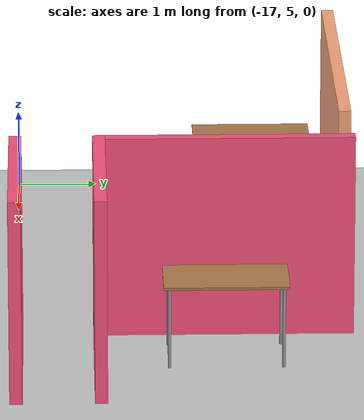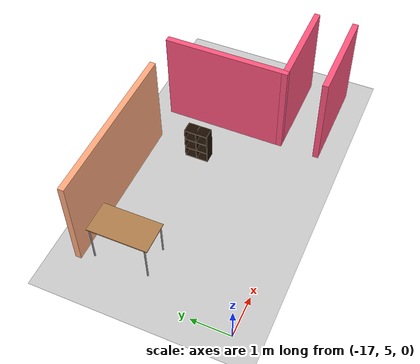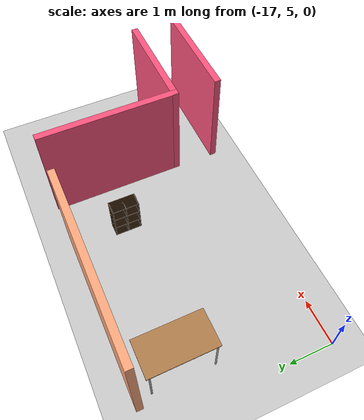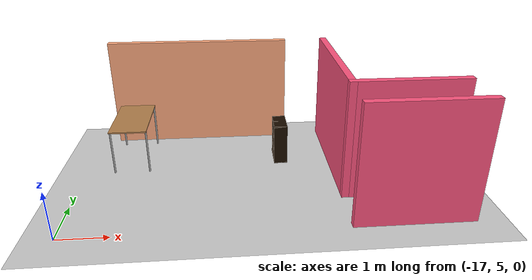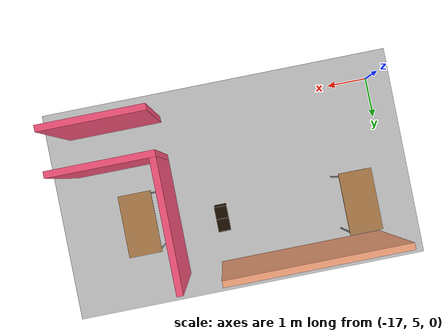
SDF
<sdf version="1.6">
 <world name="default">
  <model name="ground_plane">
   <static>1</static>
   <link name="link">
    <collision name="collision">
     <geometry><plane><normal>0 0 1</normal><size>100 100</size></plane></geometry>
     <surface><friction><ode><mu>100</mu><mu2>50</mu2></ode></friction></surface>
    </collision>
    <visual name="visual">
     <cast_shadows>0</cast_shadows>
     <geometry><plane><normal>0 0 1</normal><size>100 100</size></plane></geometry>
     <material>
      <script><uri>file://media/materials/scripts/gazebo.material</uri><name>Gazebo/Grey</name></script>
     </material>
    </visual>
   </link>
  </model>
  <model name="myWorld">
   <pose>-1.5 0 0 0 -0 0</pose>
   <link name="Wall_44">
    <collision name="Wall_44_Collision">
     <geometry><box><size>4.15 0.15 2.5</size></box></geometry>
     <pose>0 0 1.25 0 -0 0</pose>
    </collision>
    <visual name="Wall_44_Visual">
     <pose>0 0 1.25 0 -0 0</pose>
     <geometry><box><size>4.15 0.15 2.5</size></box></geometry>
     <material>
      <script><uri>file://media/materials/scripts/gazebo.material</uri><name>Gazebo/Grey</name></script>
      <ambient>1 0.666667 0.498039 1</ambient>
     </material>
     <meta><layer>0</layer></meta>
    </visual>
    <pose>-13 9 0 0 -0 0</pose>
   </link>
   <link name="Wall_90">
    <collision name="Wall_90_Collision">
     <geometry><box><size>2.4 0.15 2.5</size></box></geometry>
     <pose>0 0 1.25 0 -0 0</pose>
    </collision>
    <visual name="Wall_90_Visual">
     <pose>0 0 1.25 0 -0 0</pose>
     <geometry><box><size>2.4 0.15 2.5</size></box></geometry>
     <material>
      <script><uri>file://media/materials/scripts/gazebo.material</uri><name>Gazebo/Grey</name></script>
      <ambient>1 0.333333 0.498039 1</ambient>
     </material>
     <meta><layer>0</layer></meta>
    </visual>
    <pose>-8.875 5 0 0 -0 0</pose>
   </link>
   <link name="Wall_94">
    <collision name="Wall_94_Collision">
     <geometry><box><size>2.4 0.15 2.5</size></box></geometry>
     <pose>0 0 1.25 0 -0 0</pose>
    </collision>
    <visual name="Wall_94_Visual">
     <pose>0 0 1.25 0 -0 0</pose>
     <geometry><box><size>2.4 0.15 2.5</size></box></geometry>
     <material>
      <script><uri>file://media/materials/scripts/gazebo.material</uri><name>Gazebo/Grey</name></script>
      <ambient>1 0.333333 0.498039 1</ambient>
     </material>
     <meta><layer>0</layer></meta>
    </visual>
    <pose>-8.875 6 0 0 -0 3.14159</pose>
   </link>
   <link name="Wall_95">
    <collision name="Wall_95_Collision">
     <geometry><box><size>3.15 0.15 2.5</size></box></geometry>
     <pose>0 0 1.25 0 -0 0</pose>
    </collision>
    <visual name="Wall_95_Visual">
     <pose>0 0 1.25 0 -0 0</pose>
     <geometry><box><size>3.15 0.15 2.5</size></box></geometry>
     <material>
      <script><uri>file://media/materials/scripts/gazebo.material</uri><name>Gazebo/Grey</name></script>
      <ambient>1 0.333333 0.498039 1</ambient>
     </material>
     <meta><layer>0</layer></meta>
    </visual>
    <pose>-10 7.5 0 0 -0 1.5708</pose>
   </link>
   <static>1</static>
  </model>
  <model name="table_0">
   <static>1</static>
   <link name="link">
    <collision name="surface">
     <pose>0 0 1 0 -0 0</pose>
     <geometry><box><size>1.5 0.8 0.03</size></box></geometry>
     <surface><friction><ode><mu>0.6</mu><mu2>0.6</mu2></ode></friction></surface>
    </collision>
    <visual name="visual1">
     <pose>0 0 1 0 -0 0</pose>
     <geometry><box><size>1.5 0.8 0.03</size></box></geometry>
     <material>
      <script><uri>file://media/materials/scripts/gazebo.material</uri><name>Gazebo/Wood</name></script>
     </material>
    </visual>
    <collision name="front_left_leg">
     <pose>0.68 0.38 0.5 0 -0 0</pose>
     <geometry><cylinder><radius>0.02</radius><length>1</length></cylinder></geometry>
    </collision>
    <visual name="front_left_leg">
     <pose>0.68 0.38 0.5 0 -0 0</pose>
     <geometry><cylinder><radius>0.02</radius><length>1</length></cylinder></geometry>
     <material>
      <script><uri>file://media/materials/scripts/gazebo.material</uri><name>Gazebo/Grey</name></script>
     </material>
    </visual>
    <collision name="front_right_leg">
     <pose>0.68 -0.38 0.5 0 -0 0</pose>
     <geometry><cylinder><radius>0.02</radius><length>1</length></cylinder></geometry>
    </collision>
    <visual name="front_right_leg">
     <pose>0.68 -0.38 0.5 0 -0 0</pose>
     <geometry><cylinder><radius>0.02</radius><length>1</length></cylinder></geometry>
     <material>
      <script><uri>file://media/materials/scripts/gazebo.material</uri><name>Gazebo/Grey</name></script>
     </material>
    </visual>
    <collision name="back_right_leg">
     <pose>-0.68 -0.38 0.5 0 -0 0</pose>
     <geometry><cylinder><radius>0.02</radius><length>1</length></cylinder></geometry>
    </collision>
    <visual name="back_right_leg">
     <pose>-0.68 -0.38 0.5 0 -0 0</pose>
     <geometry><cylinder><radius>0.02</radius><length>1</length></cylinder></geometry>
     <material>
      <script><uri>file://media/materials/scripts/gazebo.material</uri><name>Gazebo/Grey</name></script>
     </material>
    </visual>
    <collision name="back_left_leg">
     <pose>-0.68 0.38 0.5 0 -0 0</pose>
     <geometry><cylinder><radius>0.02</radius><length>1</length></cylinder></geometry>
    </collision>
    <visual name="back_left_leg">
     <pose>-0.68 0.38 0.5 0 -0 0</pose>
     <geometry><cylinder><radius>0.02</radius><length>1</length></cylinder></geometry>
     <material>
      <script><uri>file://media/materials/scripts/gazebo.material</uri><name>Gazebo/Grey</name></script>
     </material>
    </visual>
   </link>
   <pose>-10.7 7.5 0 0 -0 1.5708</pose>
  </model>
  <model name="table_2">
   <static>1</static>
   <link name="link">
    <collision name="surface">
     <pose>0 0 1 0 -0 0</pose>
     <geometry><box><size>1.5 0.8 0.03</size></box></geometry>
     <surface><friction><ode><mu>0.6</mu><mu2>0.6</mu2></ode></friction></surface>
    </collision>
    <visual name="visual1">
     <pose>0 0 1 0 -0 0</pose>
     <geometry><box><size>1.5 0.8 0.03</size></box></geometry>
     <material>
      <script><uri>file://media/materials/scripts/gazebo.material</uri><name>Gazebo/Wood</name></script>
     </material>
    </visual>
    <collision name="front_left_leg">
     <pose>0.68 0.38 0.5 0 -0 0</pose>
     <geometry><cylinder><radius>0.02</radius><length>1</length></cylinder></geometry>
    </collision>
    <visual name="front_left_leg">
     <pose>0.68 0.38 0.5 0 -0 0</pose>
     <geometry><cylinder><radius>0.02</radius><length>1</length></cylinder></geometry>
     <material>
      <script><uri>file://media/materials/scripts/gazebo.material</uri><name>Gazebo/Grey</name></script>
     </material>
    </visual>
    <collision name="front_right_leg">
     <pose>0.68 -0.38 0.5 0 -0 0</pose>
     <geometry><cylinder><radius>0.02</radius><length>1</length></cylinder></geometry>
    </collision>
    <visual name="front_right_leg">
     <pose>0.68 -0.38 0.5 0 -0 0</pose>
     <geometry><cylinder><radius>0.02</radius><length>1</length></cylinder></geometry>
     <material>
      <script><uri>file://media/materials/scripts/gazebo.material</uri><name>Gazebo/Grey</name></script>
     </material>
    </visual>
    <collision name="back_right_leg">
     <pose>-0.68 -0.38 0.5 0 -0 0</pose>
     <geometry><cylinder><radius>0.02</radius><length>1</length></cylinder></geometry>
    </collision>
    <visual name="back_right_leg">
     <pose>-0.68 -0.38 0.5 0 -0 0</pose>
     <geometry><cylinder><radius>0.02</radius><length>1</length></cylinder></geometry>
     <material>
      <script><uri>file://media/materials/scripts/gazebo.material</uri><name>Gazebo/Grey</name></script>
     </material>
    </visual>
    <collision name="back_left_leg">
     <pose>-0.68 0.38 0.5 0 -0 0</pose>
     <geometry><cylinder><radius>0.02</radius><length>1</length></cylinder></geometry>
    </collision>
    <visual name="back_left_leg">
     <pose>-0.68 0.38 0.5 0 -0 0</pose>
     <geometry><cylinder><radius>0.02</radius><length>1</length></cylinder></geometry>
     <material>
      <script><uri>file://media/materials/scripts/gazebo.material</uri><name>Gazebo/Grey</name></script>
     </material>
    </visual>
   </link>
   <pose>-16 8 0 0 -0 1.5708</pose>
  </model>
  <model name="6_Cube_StorageE_3">
   <link name="Wall_0">
    <pose>0 0 0.01 0 -0 0</pose>
    <inertial>
     <mass>1.6201</mass>
     <inertia><ixx>0.0119</ixx><iyy>0.0631</iyy><izz>0.0513</izz><ixy>0</ixy><ixz>0</ixz><iyz>0</iyz></inertia>
    </inertial>
    <collision name="Wall_0_Collision"><geometry><box><size>0.616 0.296 0.02</size></box></geometry></collision>
    <visual name="Wall_0_Visual">
     <geometry><box><size>0.616 0.296 0.02</size></box></geometry>
     <material>
      <script><uri>file://media/materials/scripts/gazebo.material</uri><name>Gazebo/Grey</name></script>
      <ambient>0.105882 0.0509804 0 1</ambient>
     </material>
    </visual>
   </link>
   <joint name="0_2" type="fixed">
    <pose>-0.308 0 0 0 -0 0</pose>
    <parent>Wall_2</parent>
    <child>Wall_0</child>
    <axis>
     <xyz>1 0 0</xyz>
     <use_parent_model_frame>0</use_parent_model_frame>
     <limit><lower>-1e+16</lower><upper>1e+16</upper></limit>
    </axis>
   </joint>
   <joint name="0_12" type="fixed">
    <parent>Wall_12</parent>
    <child>Wall_0</child>
    <axis>
     <xyz>0 0 1</xyz>
     <use_parent_model_frame>0</use_parent_model_frame>
     <limit><lower>-1e+16</lower><upper>1e+16</upper></limit>
    </axis>
   </joint>
   <joint name="0_4" type="fixed">
    <pose>0.308 0 0 0 -0 0</pose>
    <parent>Wall_4</parent>
    <child>Wall_0</child>
    <axis>
     <xyz>1 0 0</xyz>
     <use_parent_model_frame>0</use_parent_model_frame>
     <limit><lower>-1e+16</lower><upper>1e+16</upper></limit>
    </axis>
   </joint>
   <link name="Wall_10">
    <pose>0 0 0.61 0 -0 0</pose>
    <inertial>
     <mass>1.6201</mass>
     <inertia><ixx>0.0119</ixx><iyy>0.0631</iyy><izz>0.0513</izz><ixy>0</ixy><ixz>0</ixz><iyz>0</iyz></inertia>
    </inertial>
    <collision name="Wall_10_Collision"><geometry><box><size>0.616 0.296 0.02</size></box></geometry></collision>
    <visual name="Wall_10_Visual">
     <geometry><box><size>0.616 0.296 0.02</size></box></geometry>
     <material>
      <script><uri>file://media/materials/scripts/gazebo.material</uri><name>Gazebo/Grey</name></script>
      <ambient>0.105882 0.0509804 0 1</ambient>
     </material>
    </visual>
   </link>
   <joint name="10_2" type="fixed">
    <pose>-0.308 0 0 0 -0 0</pose>
    <parent>Wall_2</parent>
    <child>Wall_10</child>
    <axis>
     <xyz>1 0 0</xyz>
     <use_parent_model_frame>0</use_parent_model_frame>
     <limit><lower>-1e+16</lower><upper>1e+16</upper></limit>
    </axis>
   </joint>
   <joint name="10_12" type="fixed">
    <parent>Wall_12</parent>
    <child>Wall_10</child>
    <axis>
     <xyz>0 0 1</xyz>
     <use_parent_model_frame>0</use_parent_model_frame>
     <limit><lower>-1e+16</lower><upper>1e+16</upper></limit>
    </axis>
   </joint>
   <joint name="10_4" type="fixed">
    <pose>0.308 0 0 0 -0 0</pose>
    <parent>Wall_4</parent>
    <child>Wall_10</child>
    <axis>
     <xyz>1 0 0</xyz>
     <use_parent_model_frame>0</use_parent_model_frame>
     <limit><lower>-1e+16</lower><upper>1e+16</upper></limit>
    </axis>
   </joint>
   <link name="Wall_12">
    <pose>0 0 0.4575 0 -0 0</pose>
    <inertial>
     <mass>2.4065</mass>
     <inertia><ixx>0.0177</ixx><iyy>0.1855</iyy><izz>0.168</izz><ixy>0</ixy><ixz>0</ixz><iyz>0</iyz></inertia>
    </inertial>
    <collision name="Wall_12_Collision"><geometry><box><size>0.02 0.296 0.915</size></box></geometry></collision>
    <visual name="Wall_12_Visual">
     <geometry><box><size>0.02 0.296 0.915</size></box></geometry>
     <material>
      <script><uri>file://media/materials/scripts/gazebo.material</uri><name>Gazebo/Grey</name></script>
      <ambient>0.105882 0.0509804 0 1</ambient>
     </material>
    </visual>
   </link>
   <link name="Wall_2">
    <pose>-0.298 0 0.4575 0 -0 0</pose>
    <inertial>
     <mass>2.4065</mass>
     <inertia><ixx>0.0177</ixx><iyy>0.1855</iyy><izz>0.168</izz><ixy>0</ixy><ixz>0</ixz><iyz>0</iyz></inertia>
    </inertial>
    <collision name="Wall_2_Collision"><geometry><box><size>0.02 0.296 0.915</size></box></geometry></collision>
    <visual name="Wall_2_Visual">
     <geometry><box><size>0.02 0.296 0.915</size></box></geometry>
     <material>
      <script><uri>file://media/materials/scripts/gazebo.material</uri><name>Gazebo/Grey</name></script>
      <ambient>0.105882 0.0509804 0 1</ambient>
     </material>
    </visual>
   </link>
   <link name="Wall_4">
    <pose>0.298 0 0.4575 0 -0 0</pose>
    <inertial>
     <mass>2.4065</mass>
     <inertia><ixx>0.0177</ixx><iyy>0.1855</iyy><izz>0.168</izz><ixy>0</ixy><ixz>0</ixz><iyz>0</iyz></inertia>
    </inertial>
    <collision name="Wall_4_Collision"><geometry><box><size>0.02 0.296 0.915</size></box></geometry></collision>
    <visual name="Wall_4_Visual">
     <geometry><box><size>0.02 0.296 0.915</size></box></geometry>
     <material>
      <script><uri>file://media/materials/scripts/gazebo.material</uri><name>Gazebo/Grey</name></script>
      <ambient>0.105882 0.0509804 0 1</ambient>
     </material>
    </visual>
   </link>
   <link name="Wall_6">
    <pose>0 0 0.905 0 -0 0</pose>
    <inertial>
     <mass>1.6201</mass>
     <inertia><ixx>0.0119</ixx><iyy>0.0631</iyy><izz>0.0513</izz><ixy>0</ixy><ixz>0</ixz><iyz>0</iyz></inertia>
    </inertial>
    <collision name="Wall_6_Collision"><geometry><box><size>0.616 0.296 0.02</size></box></geometry></collision>
    <visual name="Wall_6_Visual">
     <geometry><box><size>0.616 0.296 0.02</size></box></geometry>
     <material>
      <script><uri>file://media/materials/scripts/gazebo.material</uri><name>Gazebo/Grey</name></script>
      <ambient>0.105882 0.0509804 0 1</ambient>
     </material>
    </visual>
   </link>
   <joint name="6_2" type="fixed">
    <pose>-0.308 0 0 0 -0 0</pose>
    <parent>Wall_2</parent>
    <child>Wall_6</child>
    <axis>
     <xyz>2 0 0</xyz>
     <use_parent_model_frame>0</use_parent_model_frame>
     <limit><lower>-1e+16</lower><upper>1e+16</upper></limit>
    </axis>
   </joint>
   <joint name="6_12" type="fixed">
    <parent>Wall_12</parent>
    <child>Wall_6</child>
    <axis>
     <xyz>0 0 1</xyz>
     <use_parent_model_frame>0</use_parent_model_frame>
     <limit><lower>-1e+16</lower><upper>1e+16</upper></limit>
    </axis>
   </joint>
   <joint name="6_4" type="fixed">
    <pose>0.308 0 0 0 -0 0</pose>
    <parent>Wall_4</parent>
    <child>Wall_6</child>
    <axis>
     <xyz>1 0 0</xyz>
     <use_parent_model_frame>0</use_parent_model_frame>
     <limit><lower>-1e+16</lower><upper>1e+16</upper></limit>
    </axis>
   </joint>
   <link name="Wall_8">
    <pose>0 0 0.305 0 -0 0</pose>
    <inertial>
     <mass>1.6201</mass>
     <inertia><ixx>0.0119</ixx><iyy>0.0631</iyy><izz>0.0513</izz><ixy>0</ixy><ixz>0</ixz><iyz>0</iyz></inertia>
    </inertial>
    <collision name="Wall_8_Collision"><geometry><box><size>0.616 0.296 0.02</size></box></geometry></collision>
    <visual name="Wall_8_Visual">
     <geometry><box><size>0.616 0.296 0.02</size></box></geometry>
     <material>
      <script><uri>file://media/materials/scripts/gazebo.material</uri><name>Gazebo/Grey</name></script>
      <ambient>0.105882 0.0509804 0 1</ambient>
     </material>
    </visual>
   </link>
   <joint name="8_2" type="fixed">
    <pose>-0.308 0 0 0 -0 0</pose>
    <parent>Wall_2</parent>
    <child>Wall_8</child>
    <axis>
     <xyz>1 0 0</xyz>
     <use_parent_model_frame>0</use_parent_model_frame>
     <limit><lower>-1e+16</lower><upper>1e+16</upper></limit>
    </axis>
   </joint>
   <joint name="8_12" type="fixed">
    <parent>Wall_12</parent>
    <child>Wall_8</child>
    <axis>
     <xyz>0 0 1</xyz>
     <use_parent_model_frame>0</use_parent_model_frame>
     <limit><lower>-1e+16</lower><upper>1e+16</upper></limit>
    </axis>
   </joint>
   <joint name="8_4" type="fixed">
    <pose>0.308 0 0 0 -0 0</pose>
    <parent>Wall_4</parent>
    <child>Wall_8</child>
    <axis>
     <xyz>1 0 0</xyz>
     <use_parent_model_frame>0</use_parent_model_frame>
     <limit><lower>-1e+16</lower><upper>1e+16</upper></limit>
    </axis>
   </joint>
   <static>1</static>
   <pose>-12.6642 7.76301 0 0 -0 1.5708</pose>
  </model>
 </world>
</sdf>
